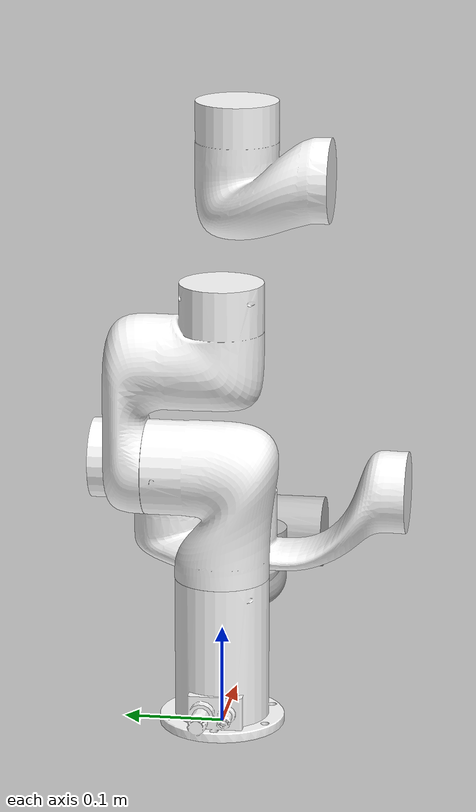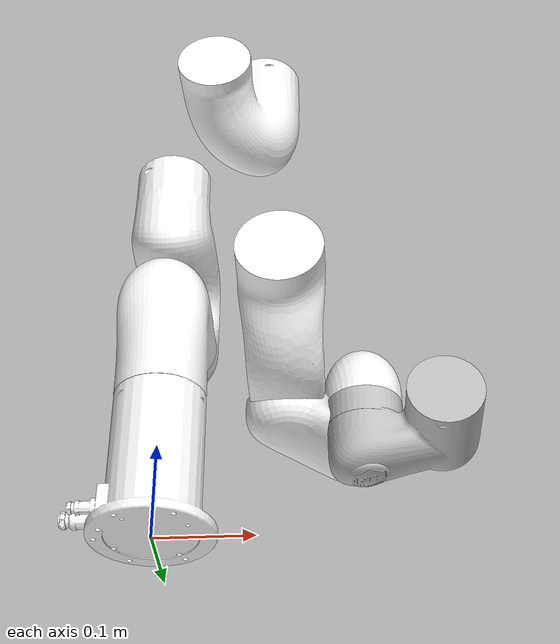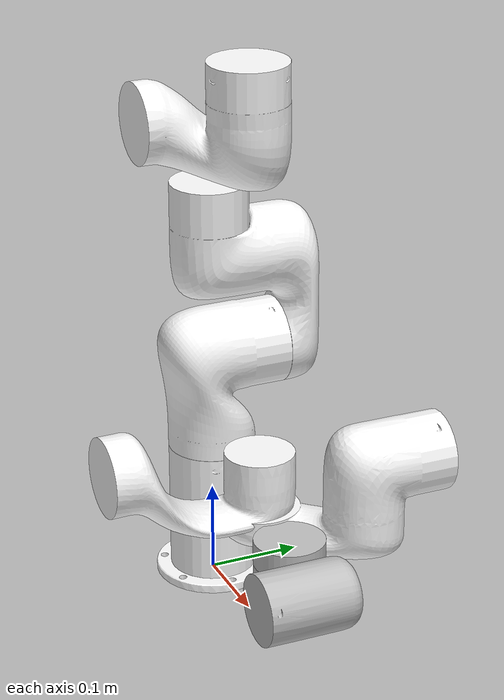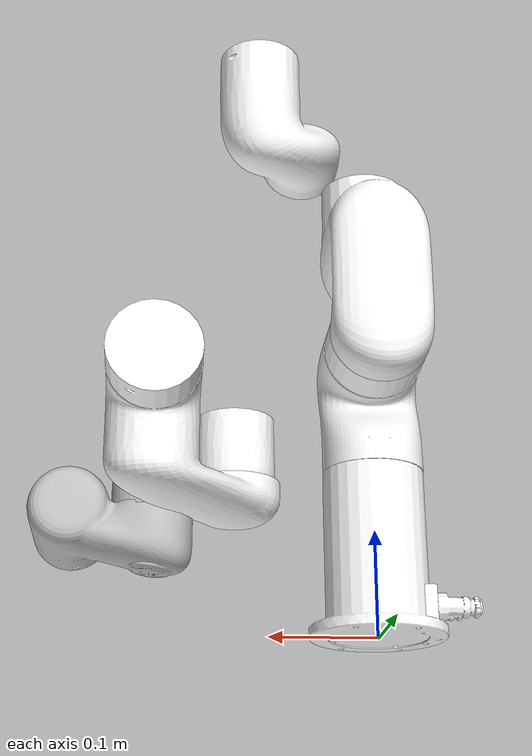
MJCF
<mujoco model="xarm6">
  <compiler angle="radian"/>

  <asset>
    <mesh name="link_base" file="/home/xiaohang_shi/catkin_ws/src/gello_software/third_party/mujoco_menagerie/ufactory_xarm6/assets/link_base.stl"/>
    <mesh name="link1" file="/home/xiaohang_shi/catkin_ws/src/gello_software/third_party/mujoco_menagerie/ufactory_xarm6/assets/link1.stl"/>
    <mesh name="link2" file="/home/xiaohang_shi/catkin_ws/src/gello_software/third_party/mujoco_menagerie/ufactory_xarm6/assets/link2.stl"/>
    <mesh name="link3" file="/home/xiaohang_shi/catkin_ws/src/gello_software/third_party/mujoco_menagerie/ufactory_xarm6/assets/link3.stl"/>
    <mesh name="link4" file="/home/xiaohang_shi/catkin_ws/src/gello_software/third_party/mujoco_menagerie/ufactory_xarm6/assets/link4.stl"/>
    <mesh name="link5" file="/home/xiaohang_shi/catkin_ws/src/gello_software/third_party/mujoco_menagerie/ufactory_xarm6/assets/link5.stl"/>
    <mesh name="link6" file="/home/xiaohang_shi/catkin_ws/src/gello_software/third_party/mujoco_menagerie/ufactory_xarm6/assets/link6.stl"/>
    <mesh name="end_tool" file="/home/xiaohang_shi/catkin_ws/src/gello_software/third_party/mujoco_menagerie/ufactory_xarm6/assets/end_tool.stl"/>
  </asset>

  <worldbody>
    <body name="link_base">
      <inertial pos="0 0 0.09103" quat="0.981065 0.000747228 -0.0021866 -0.193666" mass="2.7" diaginertia="0.00495024 0.00494031 0.00221894"/>
      <geom type="mesh" contype="0" conaffinity="0" group="1" density="0" rgba="1 1 1 1" mesh="link_base"/>
      <geom type="mesh" rgba="1 1 1 1" mesh="link_base"/>
      <body name="link1" pos="0 0 0.267">
        <inertial pos="0.00022 0.02951 -0.0124" quat="0.976139 -0.216078 -0.00387312 -0.0211677" mass="2.3814" diaginertia="0.00585697 0.00544434 0.00312315"/>
        <joint name="joint1" pos="0 0 0" axis="0 0 1" range="-6.28319 6.28319" actuatorfrcrange="-50 50" damping="1" frictionloss="1"/>
        <geom type="mesh" contype="0" conaffinity="0" group="1" density="0" rgba="1 1 1 1" mesh="link1"/>
        <geom type="mesh" rgba="1 1 1 1" mesh="link1"/>
        <body name="link2" quat="0.707105 -0.707108 0 0">
          <inertial pos="0.03881 -0.22783 0.03496" quat="0.635305 0.753023 0.170976 -0.010531" mass="2.2675" diaginertia="0.0294477 0.0281783 0.00383449"/>
          <joint name="joint2" pos="0 0 0" axis="0 0 1" range="-2.059 2.0944" actuatorfrcrange="-50 50" damping="1" frictionloss="1"/>
          <geom type="mesh" contype="0" conaffinity="0" group="1" density="0" rgba="1 1 1 1" mesh="link2"/>
          <geom type="mesh" rgba="1 1 1 1" mesh="link2"/>
          <body name="link3" pos="0.0535 -0.2845 0">
            <inertial pos="0.07041 0.11631 0.0107" quat="0.845838 0.425539 -0.293179 0.132369" mass="1.875" diaginertia="0.00714132 0.00699471 0.00196753"/>
            <joint name="joint3" pos="0 0 0" axis="0 0 1" range="-3.927 0.19198" actuatorfrcrange="-32 32" damping="1" frictionloss="1"/>
            <geom type="mesh" contype="0" conaffinity="0" group="1" density="0" rgba="1 1 1 1" mesh="link3"/>
            <geom type="mesh" rgba="1 1 1 1" mesh="link3"/>
            <body name="link4" pos="0.0775 0.3425 0" quat="0.707105 -0.707108 0 0">
              <inertial pos="-0.00018 0.01798 -0.02291" quat="0.99929 -0.0369702 0.00179434 -0.00701174" mass="1.3192" diaginertia="0.00489614 0.00447403 0.00132609"/>
              <joint name="joint4" pos="0 0 0" axis="0 0 1" range="-6.28319 6.28319" actuatorfrcrange="-32 32" damping="1" frictionloss="1"/>
              <geom type="mesh" contype="0" conaffinity="0" group="1" density="0" rgba="1 1 1 1" mesh="link4"/>
              <geom type="mesh" rgba="1 1 1 1" mesh="link4"/>
              <body name="link5" quat="0.707105 0.707108 0 0">
                <inertial pos="0.0651 0.03096 0.00315" quat="-0.223008 0.771309 0.16027 0.574163" mass="1.33854" diaginertia="0.00241824 0.00213367 0.00108731"/>
                <joint name="joint5" pos="0 0 0" axis="0 0 1" range="-1.69297 3.14159" actuatorfrcrange="-32 32" damping="1" frictionloss="1"/>
                <geom type="mesh" contype="0" conaffinity="0" group="1" density="0" rgba="1 1 1 1" mesh="link5"/>
                <geom type="mesh" rgba="1 1 1 1" mesh="link5"/>
                <body name="link6" pos="0.076 0.097 0" quat="0.707105 -0.707108 0 0">
                  <inertial pos="0 -0.00677 -0.01098" quat="0.487612 0.512088 -0.512088 0.487612" mass="0.17" diaginertia="0.000132176 9.3e-05 5.85236e-05"/>
                  <joint name="joint6" pos="0 0 0" axis="0 0 1" range="-6.28319 6.28319" actuatorfrcrange="-20 20" damping="1" frictionloss="1"/>
                  <geom type="mesh" contype="0" conaffinity="0" group="1" density="0" rgba="0.753 0.753 0.753 1" mesh="link6"/>
                  <geom type="mesh" rgba="0.753 0.753 0.753 1" mesh="end_tool"/>
                  <body name="link_eef"/>
                </body>
              </body>
            </body>
          </body>
        </body>
      </body>
    </body>
  </worldbody>
</mujoco>
